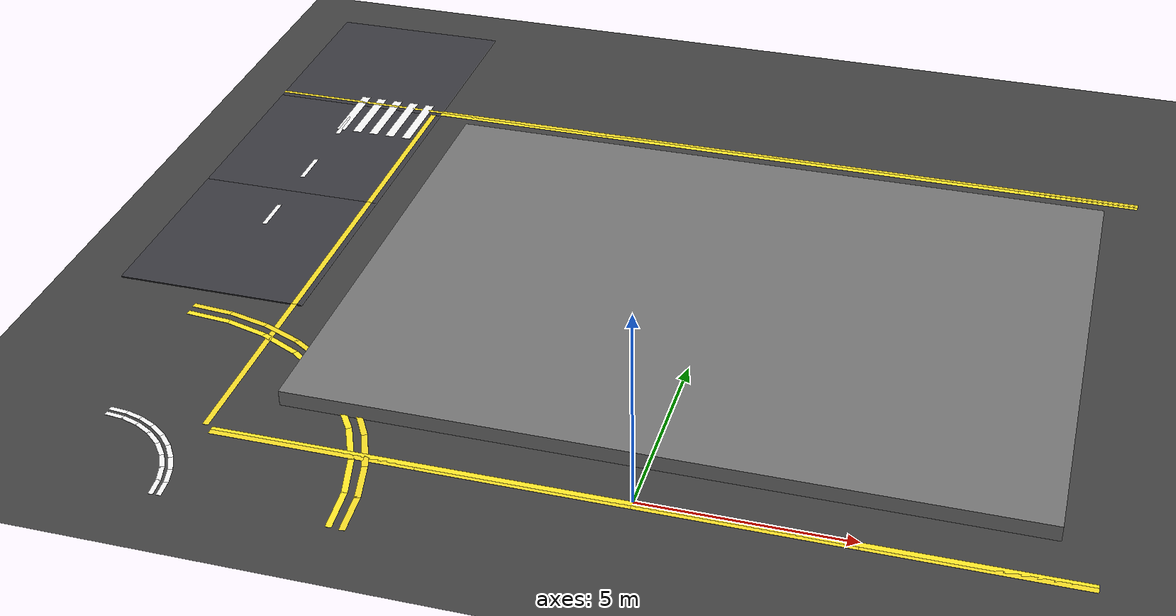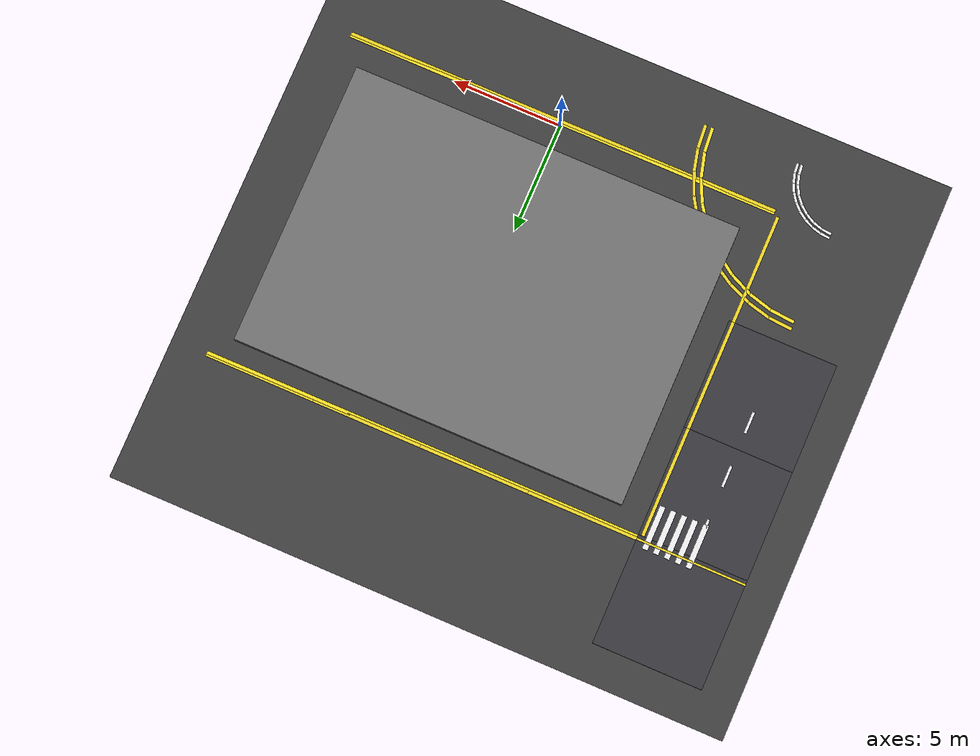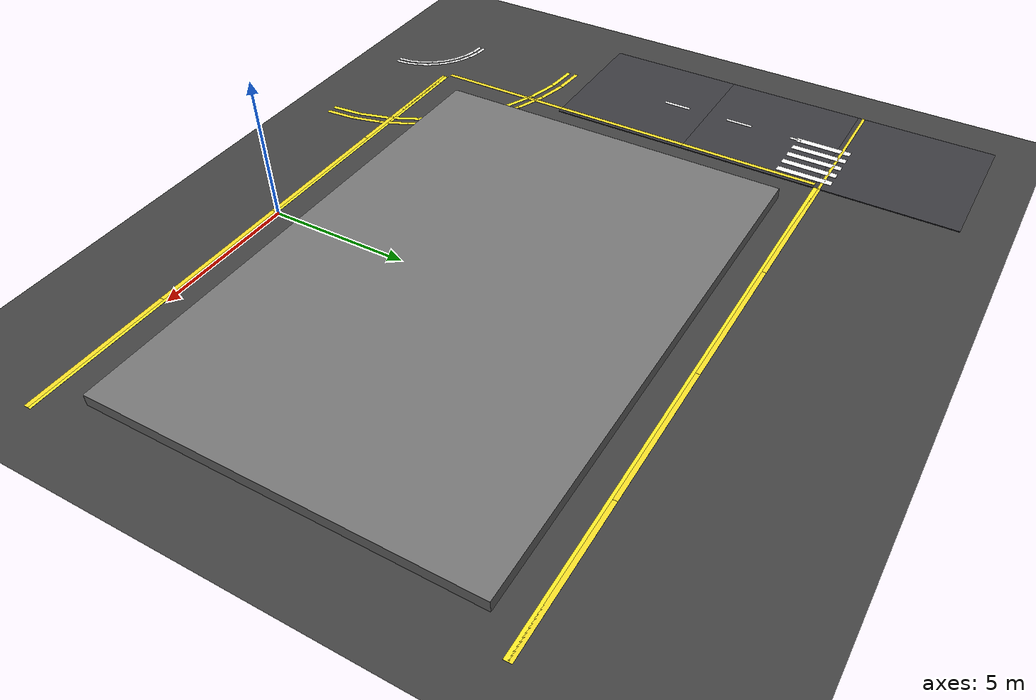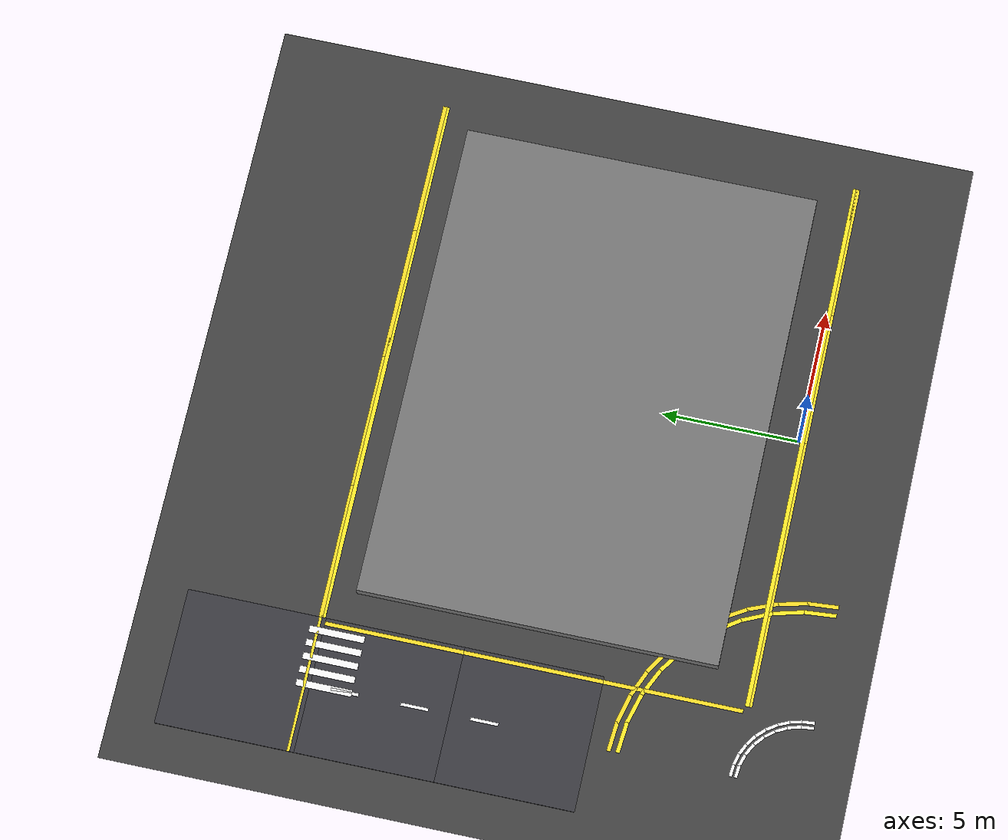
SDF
<sdf version="1.7">
 <world name="compact_city">
  <model name="ground_plane">
   <static>1</static>
   <pose>0 0 0.01 0 -0 0</pose>
   <link name="link">
    <collision name="collision">
     <geometry><plane><normal>0 0 1</normal><size>200 200</size></plane></geometry>
    </collision>
    <visual name="visual">
     <geometry><plane><normal>0 0 1</normal><size>200 200</size></plane></geometry>
     <material>
      <ambient>0.2 0.2 0.2 1</ambient>
      <diffuse>0.25 0.25 0.25 1</diffuse>
      <specular>0.1 0.1 0.1 1</specular>
     </material>
    </visual>
   </link>
  </model>
  <model name="road_tile_24">
   <static>1</static>
   <pose>-12.5 17.5 0.015 0 -0 0</pose>
   <link name="link">
    <collision name="collision"><geometry><box><size>5 5 0.03</size></box></geometry></collision>
    <visual name="visual">
     <geometry><box><size>5 5 0.03</size></box></geometry>
     <material>
      <ambient>0.18 0.18 0.2 1</ambient>
      <diffuse>0.22 0.22 0.24 1</diffuse>
      <specular>0.1 0.1 0.1 1</specular>
     </material>
    </visual>
   </link>
  </model>
  <model name="road_tile_34">
   <static>1</static>
   <pose>-12.5 12.5 0.015 0 -0 1.5708</pose>
   <link name="link">
    <collision name="collision"><geometry><box><size>5 5 0.03</size></box></geometry></collision>
    <visual name="visual">
     <geometry><box><size>5 5 0.03</size></box></geometry>
     <material>
      <ambient>0.18 0.18 0.2 1</ambient>
      <diffuse>0.22 0.22 0.24 1</diffuse>
      <specular>0.1 0.1 0.1 1</specular>
     </material>
    </visual>
   </link>
  </model>
  <model name="road_tile_38">
   <static>1</static>
   <pose>-12.5 7.5 0.015 0 -0 1.5708</pose>
   <link name="link">
    <collision name="collision"><geometry><box><size>5 5 0.03</size></box></geometry></collision>
    <visual name="visual">
     <geometry><box><size>5 5 0.03</size></box></geometry>
     <material>
      <ambient>0.18 0.18 0.2 1</ambient>
      <diffuse>0.22 0.22 0.24 1</diffuse>
      <specular>0.1 0.1 0.1 1</specular>
     </material>
    </visual>
   </link>
  </model>
  <model name="sidewalk_area_mid_center">
   <static>1</static>
   <pose>0.126319 7.66394 0.2 0 -0 0</pose>
   <link name="link">
    <collision name="collision"><geometry><box><size>18 13 0.4</size></box></geometry></collision>
    <visual name="visual">
     <geometry><box><size>18 13 0.4</size></box></geometry>
     <material>
      <ambient>0.4 0.4 0.4 1</ambient>
      <diffuse>0.45 0.45 0.45 1</diffuse>
      <specular>0.2 0.2 0.2 1</specular>
     </material>
    </visual>
   </link>
  </model>
  <model name="el_170">
   <static>1</static>
   <pose>-10.2 2.5 0.038 0 -0 1.5708</pose>
   <link name="link">
    <visual name="v">
     <geometry><box><size>5 0.15 0.002</size></box></geometry>
     <material><ambient>0.9 0.8 0.1 1</ambient><diffuse>0.95 0.85 0.15 1</diffuse></material>
    </visual>
   </link>
  </model>
  <model name="el_172">
   <static>1</static>
   <pose>-10.2 7.5 0.038 0 -0 1.5708</pose>
   <link name="link">
    <visual name="v">
     <geometry><box><size>5 0.15 0.002</size></box></geometry>
     <material><ambient>0.9 0.8 0.1 1</ambient><diffuse>0.95 0.85 0.15 1</diffuse></material>
    </visual>
   </link>
  </model>
  <model name="el_174">
   <static>1</static>
   <pose>-10.2 12.5 0.038 0 -0 1.5708</pose>
   <link name="link">
    <visual name="v">
     <geometry><box><size>5 0.15 0.002</size></box></geometry>
     <material><ambient>0.9 0.8 0.1 1</ambient><diffuse>0.95 0.85 0.15 1</diffuse></material>
    </visual>
   </link>
  </model>
  <model name="el_182">
   <static>1</static>
   <pose>-7.5 -0.2 0.038 0 -0 0</pose>
   <link name="link">
    <visual name="v">
     <geometry><box><size>5 0.15 0.002</size></box></geometry>
     <material><ambient>0.9 0.8 0.1 1</ambient><diffuse>0.95 0.85 0.15 1</diffuse></material>
    </visual>
   </link>
  </model>
  <model name="el_183">
   <static>1</static>
   <pose>-7.5 15.2 0.038 0 -0 0</pose>
   <link name="link">
    <visual name="v">
     <geometry><box><size>5 0.15 0.002</size></box></geometry>
     <material><ambient>0.9 0.8 0.1 1</ambient><diffuse>0.95 0.85 0.15 1</diffuse></material>
    </visual>
   </link>
  </model>
  <model name="el_190">
   <static>1</static>
   <pose>-2.5 -0.2 0.038 0 -0 0</pose>
   <link name="link">
    <visual name="v">
     <geometry><box><size>5 0.15 0.002</size></box></geometry>
     <material><ambient>0.9 0.8 0.1 1</ambient><diffuse>0.95 0.85 0.15 1</diffuse></material>
    </visual>
   </link>
  </model>
  <model name="el_191">
   <static>1</static>
   <pose>-2.5 15.2 0.038 0 -0 0</pose>
   <link name="link">
    <visual name="v">
     <geometry><box><size>5 0.15 0.002</size></box></geometry>
     <material><ambient>0.9 0.8 0.1 1</ambient><diffuse>0.95 0.85 0.15 1</diffuse></material>
    </visual>
   </link>
  </model>
  <model name="el_200">
   <static>1</static>
   <pose>2.5 -0.2 0.038 0 -0 0</pose>
   <link name="link">
    <visual name="v">
     <geometry><box><size>5 0.15 0.002</size></box></geometry>
     <material><ambient>0.9 0.8 0.1 1</ambient><diffuse>0.95 0.85 0.15 1</diffuse></material>
    </visual>
   </link>
  </model>
  <model name="el_201">
   <static>1</static>
   <pose>2.5 15.2 0.038 0 -0 0</pose>
   <link name="link">
    <visual name="v">
     <geometry><box><size>5 0.15 0.002</size></box></geometry>
     <material><ambient>0.9 0.8 0.1 1</ambient><diffuse>0.95 0.85 0.15 1</diffuse></material>
    </visual>
   </link>
  </model>
  <model name="el_208">
   <static>1</static>
   <pose>7.5 -0.2 0.038 0 -0 0</pose>
   <link name="link">
    <visual name="v">
     <geometry><box><size>5 0.15 0.002</size></box></geometry>
     <material><ambient>0.9 0.8 0.1 1</ambient><diffuse>0.95 0.85 0.15 1</diffuse></material>
    </visual>
   </link>
  </model>
  <model name="el_209">
   <static>1</static>
   <pose>7.5 15.2 0.038 0 -0 0</pose>
   <link name="link">
    <visual name="v">
     <geometry><box><size>5 0.15 0.002</size></box></geometry>
     <material><ambient>0.9 0.8 0.1 1</ambient><diffuse>0.95 0.85 0.15 1</diffuse></material>
    </visual>
   </link>
  </model>
  <model name="ld_26">
   <static>1</static>
   <pose>-12.5000 8.7500 0.038 0 -0 1.5708</pose>
   <link name="link">
    <visual name="v">
     <geometry><box><size>1 0.12 0.002</size></box></geometry>
     <material><ambient>1 1 1 1</ambient><diffuse>0.95 0.95 0.95 1</diffuse></material>
    </visual>
   </link>
  </model>
  <model name="ld_27">
   <static>1</static>
   <pose>-12.5000 11.2500 0.038 0 -0 1.5708</pose>
   <link name="link">
    <visual name="v">
     <geometry><box><size>1 0.12 0.002</size></box></geometry>
     <material><ambient>1 1 1 1</ambient><diffuse>0.95 0.95 0.95 1</diffuse></material>
    </visual>
   </link>
  </model>
  <model name="ld_28">
   <static>1</static>
   <pose>-12.5000 13.7500 0.038 0 -0 1.5708</pose>
   <link name="link">
    <visual name="v">
     <geometry><box><size>1 0.12 0.002</size></box></geometry>
     <material><ambient>1 1 1 1</ambient><diffuse>0.95 0.95 0.95 1</diffuse></material>
    </visual>
   </link>
  </model>
  <model name="ie_292">
   <static>1</static>
   <pose>-12.5 15.2 0.038 0 -0 0</pose>
   <link name="link">
    <visual name="v">
     <geometry><box><size>5 0.1 0.002</size></box></geometry>
     <material><ambient>0.9 0.8 0.1 1</ambient><diffuse>0.95 0.85 0.15 1</diffuse></material>
    </visual>
   </link>
  </model>
  <model name="rr_642">
   <static>1</static>
   <pose>-10.3011 -2.2946 0.038 0 -0 1.669</pose>
   <link name="link">
    <visual name="v">
     <geometry><box><size>0.486949 0.12 0.002</size></box></geometry>
     <material><ambient>1 1 1 1</ambient><diffuse>0.95 0.95 0.95 1</diffuse></material>
    </visual>
   </link>
  </model>
  <model name="rr_643">
   <static>1</static>
   <pose>-10.389 -1.8523 0.038 0 -0 1.8653</pose>
   <link name="link">
    <visual name="v">
     <geometry><box><size>0.486949 0.12 0.002</size></box></geometry>
     <material><ambient>1 1 1 1</ambient><diffuse>0.95 0.95 0.95 1</diffuse></material>
    </visual>
   </link>
  </model>
  <model name="rr_644">
   <static>1</static>
   <pose>-10.5616 -1.4358 0.038 0 -0 2.0617</pose>
   <link name="link">
    <visual name="v">
     <geometry><box><size>0.486949 0.12 0.002</size></box></geometry>
     <material><ambient>1 1 1 1</ambient><diffuse>0.95 0.95 0.95 1</diffuse></material>
    </visual>
   </link>
  </model>
  <model name="rr_645">
   <static>1</static>
   <pose>-10.8121 -1.0609 0.038 0 -0 2.258</pose>
   <link name="link">
    <visual name="v">
     <geometry><box><size>0.486949 0.12 0.002</size></box></geometry>
     <material><ambient>1 1 1 1</ambient><diffuse>0.95 0.95 0.95 1</diffuse></material>
    </visual>
   </link>
  </model>
  <model name="rr_646">
   <static>1</static>
   <pose>-11.1309 -0.7421 0.038 0 -0 2.4544</pose>
   <link name="link">
    <visual name="v">
     <geometry><box><size>0.486949 0.12 0.002</size></box></geometry>
     <material><ambient>1 1 1 1</ambient><diffuse>0.95 0.95 0.95 1</diffuse></material>
    </visual>
   </link>
  </model>
  <model name="rr_647">
   <static>1</static>
   <pose>-11.5058 -0.4916 0.038 0 -0 2.6507</pose>
   <link name="link">
    <visual name="v">
     <geometry><box><size>0.486949 0.12 0.002</size></box></geometry>
     <material><ambient>1 1 1 1</ambient><diffuse>0.95 0.95 0.95 1</diffuse></material>
    </visual>
   </link>
  </model>
  <model name="rr_648">
   <static>1</static>
   <pose>-11.9223 -0.319 0.038 0 -0 2.8471</pose>
   <link name="link">
    <visual name="v">
     <geometry><box><size>0.486949 0.12 0.002</size></box></geometry>
     <material><ambient>1 1 1 1</ambient><diffuse>0.95 0.95 0.95 1</diffuse></material>
    </visual>
   </link>
  </model>
  <model name="rr_649">
   <static>1</static>
   <pose>-12.3646 -0.2311 0.038 0 -0 3.0434</pose>
   <link name="link">
    <visual name="v">
     <geometry><box><size>0.486949 0.12 0.002</size></box></geometry>
     <material><ambient>1 1 1 1</ambient><diffuse>0.95 0.95 0.95 1</diffuse></material>
    </visual>
   </link>
  </model>
  <model name="ro_674">
   <static>1</static>
   <pose>-5.811 -1.9865 0.038 0 -0 1.6493</pose>
   <link name="link">
    <visual name="v">
     <geometry><box><size>1.1204 0.15 0.002</size></box></geometry>
     <material><ambient>0.9 0.8 0.1 1</ambient><diffuse>0.95 0.85 0.15 1</diffuse></material>
    </visual>
   </link>
  </model>
  <model name="ro_675">
   <static>1</static>
   <pose>-5.9779 -0.9326 0.038 0 -0 1.8064</pose>
   <link name="link">
    <visual name="v">
     <geometry><box><size>1.1204 0.15 0.002</size></box></geometry>
     <material><ambient>0.9 0.8 0.1 1</ambient><diffuse>0.95 0.85 0.15 1</diffuse></material>
    </visual>
   </link>
  </model>
  <model name="ro_676">
   <static>1</static>
   <pose>-6.3076 0.0822 0.038 0 -0 1.9635</pose>
   <link name="link">
    <visual name="v">
     <geometry><box><size>1.1204 0.15 0.002</size></box></geometry>
     <material><ambient>0.9 0.8 0.1 1</ambient><diffuse>0.95 0.85 0.15 1</diffuse></material>
    </visual>
   </link>
  </model>
  <model name="ro_677">
   <static>1</static>
   <pose>-6.792 1.033 0.038 0 -0 2.1206</pose>
   <link name="link">
    <visual name="v">
     <geometry><box><size>1.1204 0.15 0.002</size></box></geometry>
     <material><ambient>0.9 0.8 0.1 1</ambient><diffuse>0.95 0.85 0.15 1</diffuse></material>
    </visual>
   </link>
  </model>
  <model name="ro_678">
   <static>1</static>
   <pose>-7.4192 1.8962 0.038 0 -0 2.2777</pose>
   <link name="link">
    <visual name="v">
     <geometry><box><size>1.1204 0.15 0.002</size></box></geometry>
     <material><ambient>0.9 0.8 0.1 1</ambient><diffuse>0.95 0.85 0.15 1</diffuse></material>
    </visual>
   </link>
  </model>
  <model name="ro_679">
   <static>1</static>
   <pose>-8.1738 2.6508 0.038 0 -0 2.4347</pose>
   <link name="link">
    <visual name="v">
     <geometry><box><size>1.1204 0.15 0.002</size></box></geometry>
     <material><ambient>0.9 0.8 0.1 1</ambient><diffuse>0.95 0.85 0.15 1</diffuse></material>
    </visual>
   </link>
  </model>
  <model name="ro_680">
   <static>1</static>
   <pose>-9.037 3.278 0.038 0 -0 2.5918</pose>
   <link name="link">
    <visual name="v">
     <geometry><box><size>1.1204 0.15 0.002</size></box></geometry>
     <material><ambient>0.9 0.8 0.1 1</ambient><diffuse>0.95 0.85 0.15 1</diffuse></material>
    </visual>
   </link>
  </model>
  <model name="ro_681">
   <static>1</static>
   <pose>-9.9878 3.7624 0.038 0 -0 2.7489</pose>
   <link name="link">
    <visual name="v">
     <geometry><box><size>1.1204 0.15 0.002</size></box></geometry>
     <material><ambient>0.9 0.8 0.1 1</ambient><diffuse>0.95 0.85 0.15 1</diffuse></material>
    </visual>
   </link>
  </model>
  <model name="ro_682">
   <static>1</static>
   <pose>-11.0026 4.0921 0.038 0 -0 2.906</pose>
   <link name="link">
    <visual name="v">
     <geometry><box><size>1.1204 0.15 0.002</size></box></geometry>
     <material><ambient>0.9 0.8 0.1 1</ambient><diffuse>0.95 0.85 0.15 1</diffuse></material>
    </visual>
   </link>
  </model>
  <model name="ro_683">
   <static>1</static>
   <pose>-12.0565 4.259 0.038 0 -0 3.0631</pose>
   <link name="link">
    <visual name="v">
     <geometry><box><size>1.1204 0.15 0.002</size></box></geometry>
     <material><ambient>0.9 0.8 0.1 1</ambient><diffuse>0.95 0.85 0.15 1</diffuse></material>
    </visual>
   </link>
  </model>
  <model name="edge_h_9">
   <static>1</static>
   <pose>0 15.1 0.038 0 -0 0</pose>
   <link name="link">
    <visual name="visual">
     <geometry><box><size>20 0.15 0.002</size></box></geometry>
     <material><ambient>0.95 0.85 0.1 1</ambient><diffuse>1 0.9 0.15 1</diffuse></material>
    </visual>
   </link>
  </model>
  <model name="edge_h_16">
   <static>1</static>
   <pose>0 -0.1 0.038 0 -0 0</pose>
   <link name="link">
    <visual name="visual">
     <geometry><box><size>20 0.15 0.002</size></box></geometry>
     <material><ambient>0.95 0.85 0.1 1</ambient><diffuse>1 0.9 0.15 1</diffuse></material>
    </visual>
   </link>
  </model>
  <model name="ra_ring_501">
   <static>1</static>
   <pose>-10.109 -2.3029 0.038 0 -0 1.6581</pose>
   <link name="link">
    <visual name="visual">
     <geometry><box><size>0.455779 0.12 0.002</size></box></geometry>
     <material><ambient>1 1 1 1</ambient><diffuse>0.95 0.95 0.95 1</diffuse></material>
    </visual>
   </link>
  </model>
  <model name="ra_ring_502">
   <static>1</static>
   <pose>-10.1844 -1.8754 0.038 0 -0 1.8326</pose>
   <link name="link">
    <visual name="visual">
     <geometry><box><size>0.455779 0.12 0.002</size></box></geometry>
     <material><ambient>1 1 1 1</ambient><diffuse>0.95 0.95 0.95 1</diffuse></material>
    </visual>
   </link>
  </model>
  <model name="ra_ring_503">
   <static>1</static>
   <pose>-10.3329 -1.4675 0.038 0 -0 2.0071</pose>
   <link name="link">
    <visual name="visual">
     <geometry><box><size>0.455779 0.12 0.002</size></box></geometry>
     <material><ambient>1 1 1 1</ambient><diffuse>0.95 0.95 0.95 1</diffuse></material>
    </visual>
   </link>
  </model>
  <model name="ra_ring_504">
   <static>1</static>
   <pose>-10.5499 -1.0915 0.038 0 -0 2.1817</pose>
   <link name="link">
    <visual name="visual">
     <geometry><box><size>0.455779 0.12 0.002</size></box></geometry>
     <material><ambient>1 1 1 1</ambient><diffuse>0.95 0.95 0.95 1</diffuse></material>
    </visual>
   </link>
  </model>
  <model name="ra_ring_505">
   <static>1</static>
   <pose>-10.829 -0.759 0.038 0 -0 2.3562</pose>
   <link name="link">
    <visual name="visual">
     <geometry><box><size>0.455779 0.12 0.002</size></box></geometry>
     <material><ambient>1 1 1 1</ambient><diffuse>0.95 0.95 0.95 1</diffuse></material>
    </visual>
   </link>
  </model>
  <model name="ra_ring_506">
   <static>1</static>
   <pose>-11.1615 -0.4799 0.038 0 -0 2.5307</pose>
   <link name="link">
    <visual name="visual">
     <geometry><box><size>0.455779 0.12 0.002</size></box></geometry>
     <material><ambient>1 1 1 1</ambient><diffuse>0.95 0.95 0.95 1</diffuse></material>
    </visual>
   </link>
  </model>
  <model name="ra_ring_507">
   <static>1</static>
   <pose>-11.5375 -0.2629 0.038 0 -0 2.7053</pose>
   <link name="link">
    <visual name="visual">
     <geometry><box><size>0.455779 0.12 0.002</size></box></geometry>
     <material><ambient>1 1 1 1</ambient><diffuse>0.95 0.95 0.95 1</diffuse></material>
    </visual>
   </link>
  </model>
  <model name="ra_ring_508">
   <static>1</static>
   <pose>-11.9454 -0.1144 0.038 0 -0 2.8798</pose>
   <link name="link">
    <visual name="visual">
     <geometry><box><size>0.455779 0.12 0.002</size></box></geometry>
     <material><ambient>1 1 1 1</ambient><diffuse>0.95 0.95 0.95 1</diffuse></material>
    </visual>
   </link>
  </model>
  <model name="ra_ring_509">
   <static>1</static>
   <pose>-12.3729 -0.039 0.038 0 -0 3.0543</pose>
   <link name="link">
    <visual name="visual">
     <geometry><box><size>0.455779 0.12 0.002</size></box></geometry>
     <material><ambient>1 1 1 1</ambient><diffuse>0.95 0.95 0.95 1</diffuse></material>
    </visual>
   </link>
  </model>
  <model name="ra_outer_537">
   <static>1</static>
   <pose>-6.1394 -1.9556 0.038 0 -0 1.6581</pose>
   <link name="link">
    <visual name="visual">
     <geometry><box><size>1.15302 0.15 0.002</size></box></geometry>
     <material><ambient>0.95 0.85 0.1 1</ambient><diffuse>1 0.9 0.15 1</diffuse></material>
    </visual>
   </link>
  </model>
  <model name="ra_outer_538">
   <static>1</static>
   <pose>-6.3354 -0.8441 0.038 0 -0 1.8326</pose>
   <link name="link">
    <visual name="visual">
     <geometry><box><size>1.15302 0.15 0.002</size></box></geometry>
     <material><ambient>0.95 0.85 0.1 1</ambient><diffuse>1 0.9 0.15 1</diffuse></material>
    </visual>
   </link>
  </model>
  <model name="ra_outer_539">
   <static>1</static>
   <pose>-6.7214 0.2166 0.038 0 -0 2.0071</pose>
   <link name="link">
    <visual name="visual">
     <geometry><box><size>1.15302 0.15 0.002</size></box></geometry>
     <material><ambient>0.95 0.85 0.1 1</ambient><diffuse>1 0.9 0.15 1</diffuse></material>
    </visual>
   </link>
  </model>
  <model name="ra_outer_540">
   <static>1</static>
   <pose>-7.2858 1.1941 0.038 0 -0 2.1817</pose>
   <link name="link">
    <visual name="visual">
     <geometry><box><size>1.15302 0.15 0.002</size></box></geometry>
     <material><ambient>0.95 0.85 0.1 1</ambient><diffuse>1 0.9 0.15 1</diffuse></material>
    </visual>
   </link>
  </model>
  <model name="ra_outer_541">
   <static>1</static>
   <pose>-8.0113 2.0587 0.038 0 -0 2.3562</pose>
   <link name="link">
    <visual name="visual">
     <geometry><box><size>1.15302 0.15 0.002</size></box></geometry>
     <material><ambient>0.95 0.85 0.1 1</ambient><diffuse>1 0.9 0.15 1</diffuse></material>
    </visual>
   </link>
  </model>
  <model name="ra_outer_542">
   <static>1</static>
   <pose>-8.8759 2.7842 0.038 0 -0 2.5307</pose>
   <link name="link">
    <visual name="visual">
     <geometry><box><size>1.15302 0.15 0.002</size></box></geometry>
     <material><ambient>0.95 0.85 0.1 1</ambient><diffuse>1 0.9 0.15 1</diffuse></material>
    </visual>
   </link>
  </model>
  <model name="ra_outer_543">
   <static>1</static>
   <pose>-9.8534 3.3486 0.038 0 -0 2.7053</pose>
   <link name="link">
    <visual name="visual">
     <geometry><box><size>1.15302 0.15 0.002</size></box></geometry>
     <material><ambient>0.95 0.85 0.1 1</ambient><diffuse>1 0.9 0.15 1</diffuse></material>
    </visual>
   </link>
  </model>
  <model name="ra_outer_544">
   <static>1</static>
   <pose>-10.9141 3.7346 0.038 0 -0 2.8798</pose>
   <link name="link">
    <visual name="visual">
     <geometry><box><size>1.15302 0.15 0.002</size></box></geometry>
     <material><ambient>0.95 0.85 0.1 1</ambient><diffuse>1 0.9 0.15 1</diffuse></material>
    </visual>
   </link>
  </model>
  <model name="ra_outer_545">
   <static>1</static>
   <pose>-12.0256 3.9306 0.038 0 -0 3.0543</pose>
   <link name="link">
    <visual name="visual">
     <geometry><box><size>1.15302 0.15 0.002</size></box></geometry>
     <material><ambient>0.95 0.85 0.1 1</ambient><diffuse>1 0.9 0.15 1</diffuse></material>
    </visual>
   </link>
  </model>
  <model name="xwalk_586">
   <static>1</static>
   <pose>-12.5 14.5 0.038 0 -0 1.5708</pose>
   <link name="link">
    <visual name="visual">
     <geometry><box><size>2 0.25 0.002</size></box></geometry>
     <material><ambient>1 1 1 1</ambient><diffuse>0.95 0.95 0.95 1</diffuse></material>
    </visual>
   </link>
  </model>
  <model name="xwalk_587">
   <static>1</static>
   <pose>-12 14.5 0.038 0 -0 1.5708</pose>
   <link name="link">
    <visual name="visual">
     <geometry><box><size>2 0.25 0.002</size></box></geometry>
     <material><ambient>1 1 1 1</ambient><diffuse>0.95 0.95 0.95 1</diffuse></material>
    </visual>
   </link>
  </model>
  <model name="xwalk_588">
   <static>1</static>
   <pose>-11.5 14.5 0.038 0 -0 1.5708</pose>
   <link name="link">
    <visual name="visual">
     <geometry><box><size>2 0.25 0.002</size></box></geometry>
     <material><ambient>1 1 1 1</ambient><diffuse>0.95 0.95 0.95 1</diffuse></material>
    </visual>
   </link>
  </model>
  <model name="xwalk_589">
   <static>1</static>
   <pose>-11 14.5 0.038 0 -0 1.5708</pose>
   <link name="link">
    <visual name="visual">
     <geometry><box><size>2 0.25 0.002</size></box></geometry>
     <material><ambient>1 1 1 1</ambient><diffuse>0.95 0.95 0.95 1</diffuse></material>
    </visual>
   </link>
  </model>
  <model name="xwalk_590">
   <static>1</static>
   <pose>-10.5 14.5 0.038 0 -0 1.5708</pose>
   <link name="link">
    <visual name="visual">
     <geometry><box><size>2 0.25 0.002</size></box></geometry>
     <material><ambient>1 1 1 1</ambient><diffuse>0.95 0.95 0.95 1</diffuse></material>
    </visual>
   </link>
  </model>
 </world>
</sdf>
